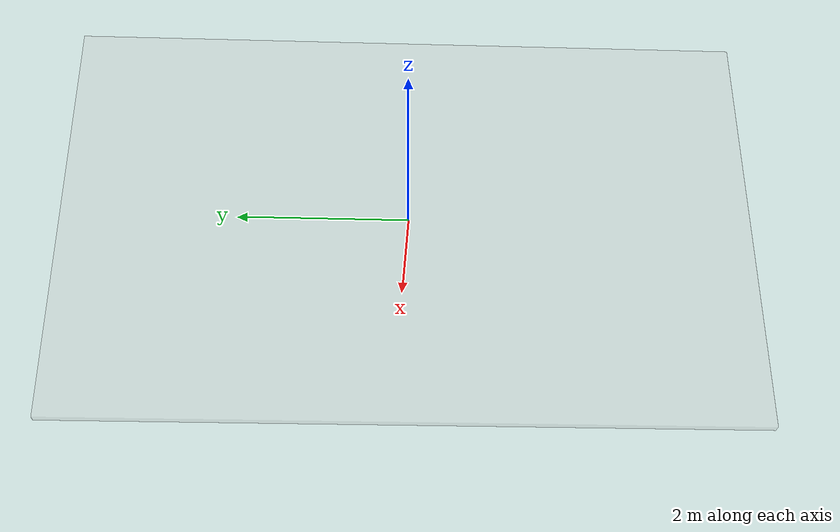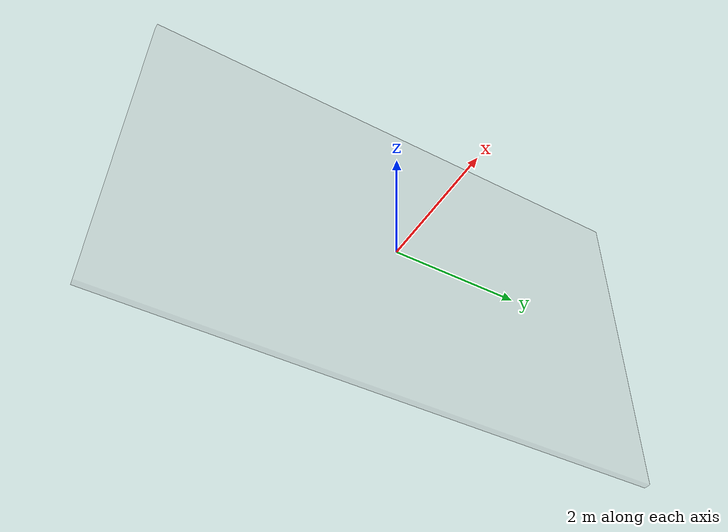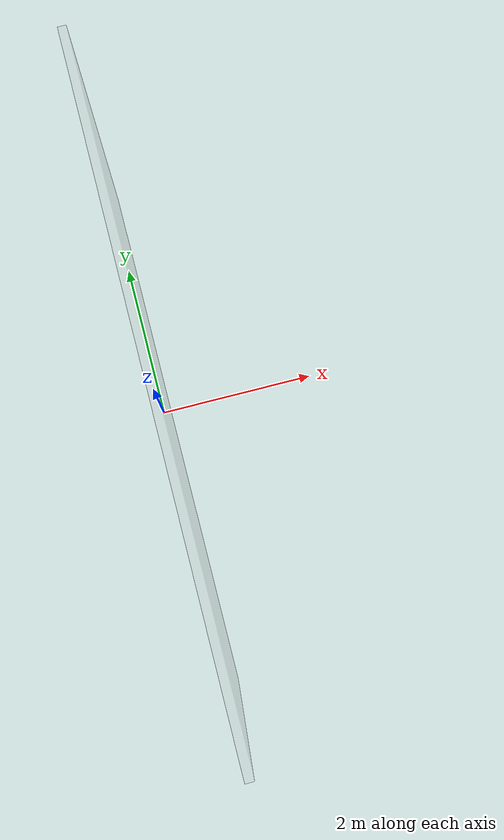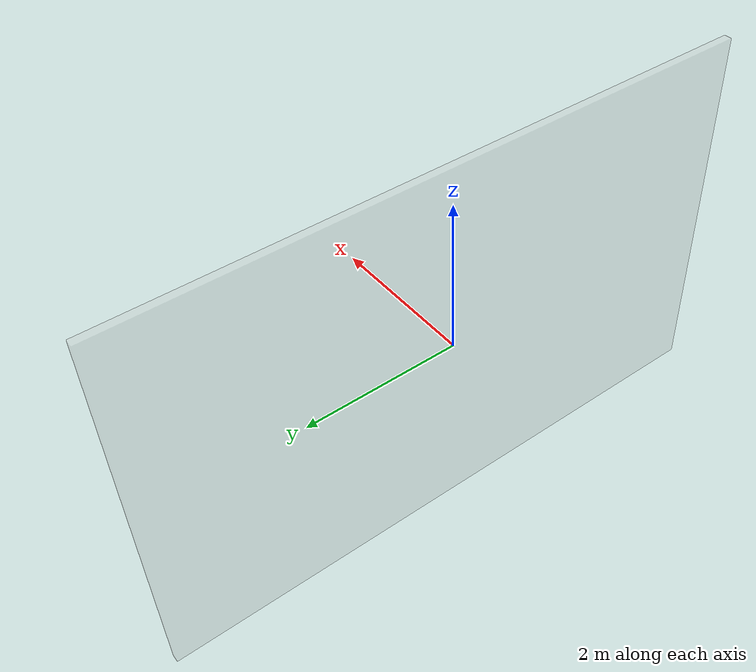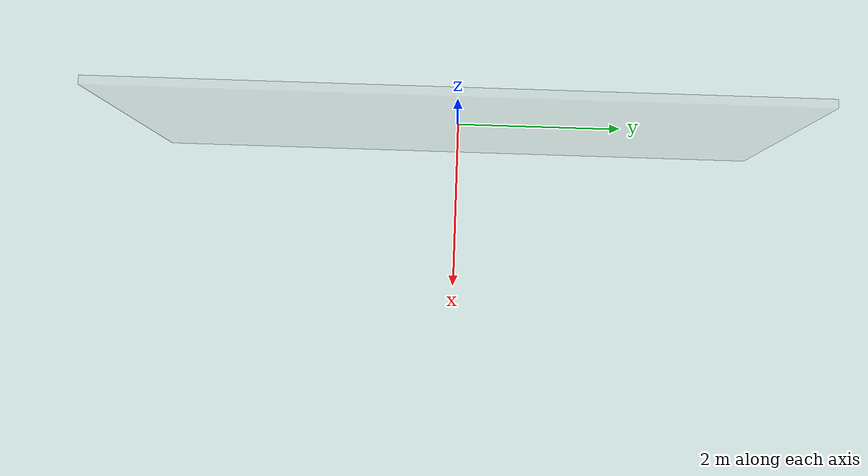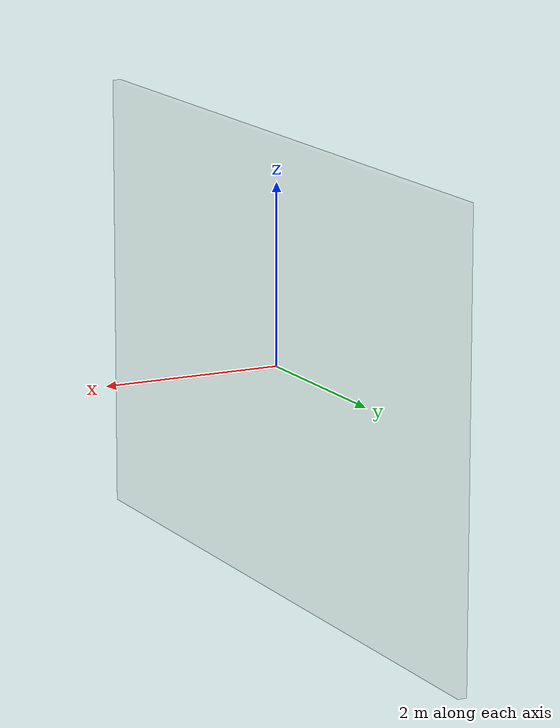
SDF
<?xml version='1.0' encoding='utf-8'?>
<sdf version='1.10'>
    <model name='wall_transparent'>
      <pose>0 0 0 0 0 0</pose>
      <link name='box_link'>
        <collision name='box_collision'>
          <geometry>
            <box>
              <size>8.1 0.1 5</size>
            </box>
          </geometry>
          <surface>
            <friction>
              <ode/>
            </friction>
            <bounce/>
            <contact/>
          </surface>
        </collision>
        <visual name='box_visual'>
          <geometry>
            <box>
              <size>0.1 8.1 5</size>
            </box>
          </geometry>
          <material>
            <ambient>0.300000012 0.300000012 0.300000012 1</ambient>
            <diffuse>0.699999988 0.699999988 0.699999988 1</diffuse>
            <specular>1 1 1 1</specular>
          </material>
          <transparency> 0.95 </transparency>
          <cast_shadows>false</cast_shadows>
        </visual>
        <pose>0 0 0 0 0 0</pose>
        <enable_wind>false</enable_wind>
      </link>
      <static>true</static>
      <self_collide>false</self_collide>
    </model>
</sdf>
